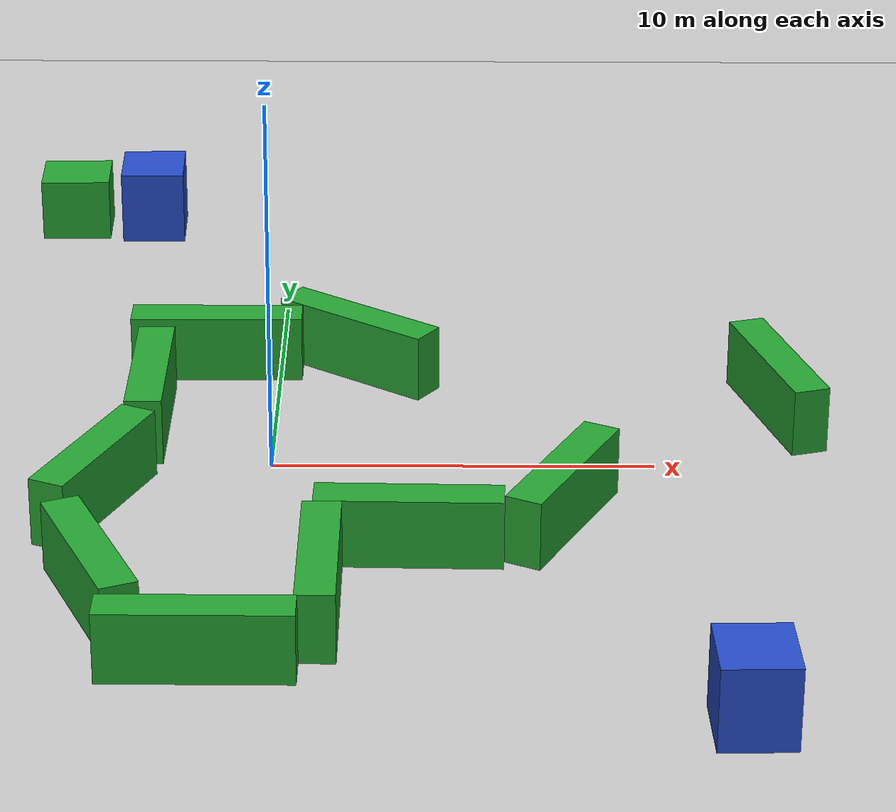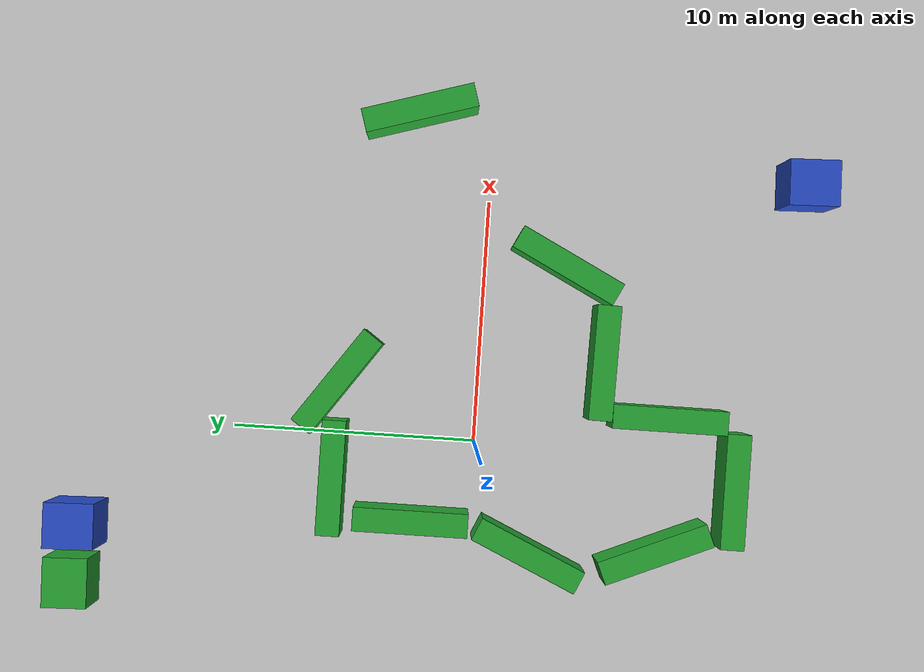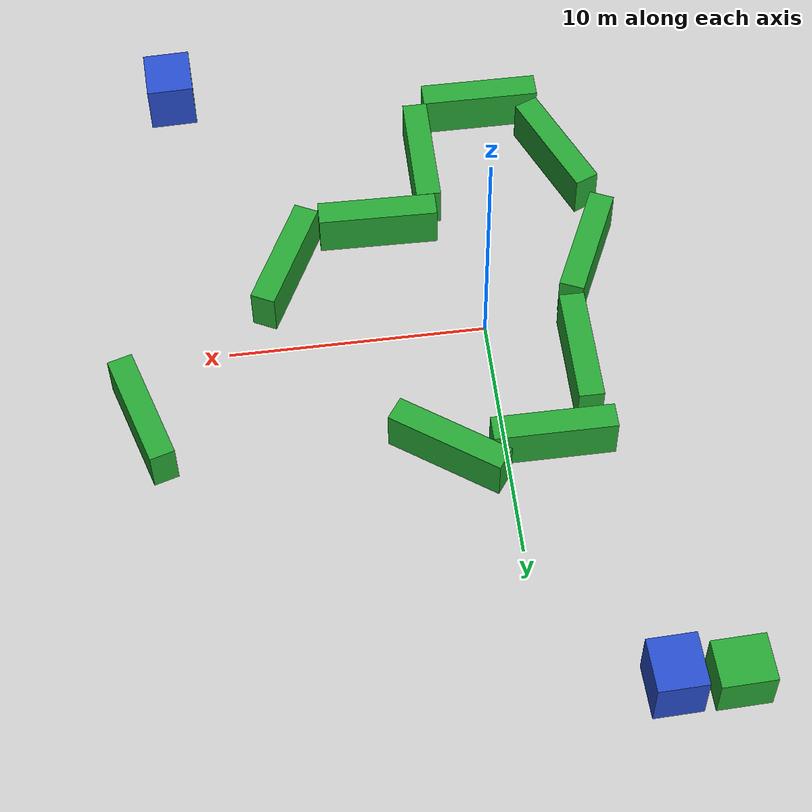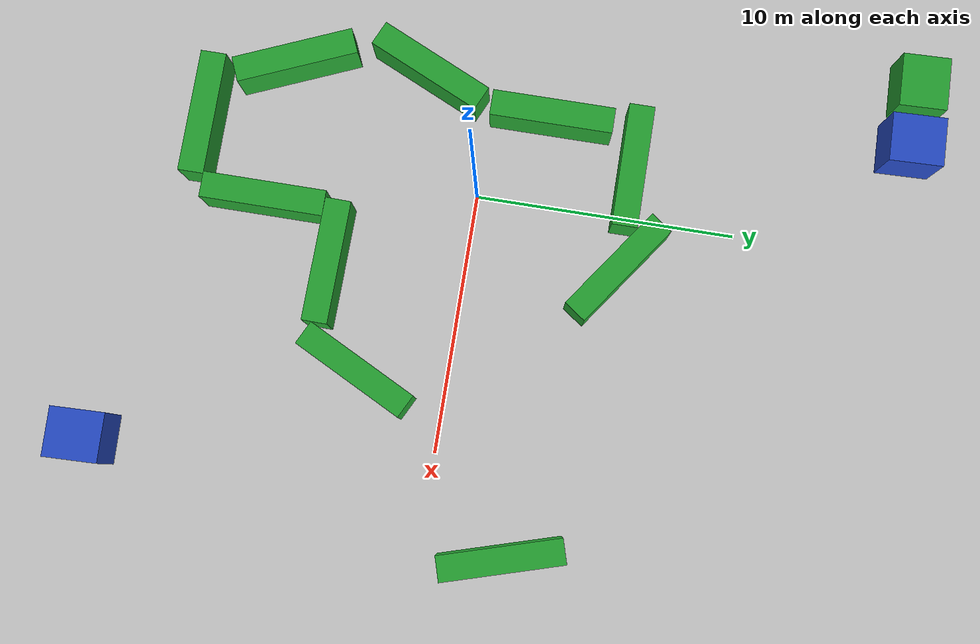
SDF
<sdf version="1.7">
 <world name="default">
  <light name="sun" type="directional">
   <pose>0 0 10 0 -0 0</pose>
   <diffuse>0.8 0.8 0.8 1</diffuse>
   <specular>0.2 0.2 0.2 1</specular>
   <attenuation>
    <range>1000</range>
    <constant>0.9</constant>
    <linear>0.01</linear>
    <quadratic>0.001</quadratic>
   </attenuation>
   <direction>-0.5 0.1 -0.9</direction>
   <spot><inner_angle>0</inner_angle><outer_angle>0</outer_angle><falloff>0</falloff></spot>
  </light>
  <model name="ground_plane">
   <static>1</static>
   <link name="link">
    <collision name="collision">
     <geometry><plane><normal>0 0 1</normal><size>100 100</size></plane></geometry>
     <surface><friction><ode><mu>100</mu><mu2>50</mu2></ode></friction></surface>
    </collision>
    <visual name="visual">
     <cast_shadows>0</cast_shadows>
     <geometry><plane><normal>0 0 1</normal><size>100 100</size></plane></geometry>
     <material>
      <script><uri>file://media/materials/scripts/gazebo.material</uri><name>Gazebo/Grey</name></script>
     </material>
    </visual>
   </link>
  </model>
  <gravity>0 0 -9.8</gravity>
  <magnetic_field>6e-06 2.3e-05 -4.2e-05</magnetic_field>
  <atmosphere type="adiabatic"/>
  <physics type="ode">
   <max_step_size>0.001</max_step_size>
   <real_time_factor>1</real_time_factor>
   <real_time_update_rate>1000</real_time_update_rate>
  </physics>
  <scene><ambient>0.4 0.4 0.4 1</ambient><background>0.7 0.7 0.7 1</background><shadows>1</shadows></scene>
  <audio><device>default</device></audio>
  <spherical_coordinates>
   <surface_model>EARTH_WGS84</surface_model>
   <latitude_deg>0</latitude_deg>
   <longitude_deg>0</longitude_deg>
   <elevation>0</elevation>
   <heading_deg>0</heading_deg>
  </spherical_coordinates>
  <model name="unit_box_clone_clone">
   <pose>-6.68355 16.181 0.914025 1.5708 -0 0.031251</pose>
   <link name="link">
    <inertial>
     <mass>1</mass>
     <inertia>
      <ixx>0.166667</ixx>
      <ixy>0</ixy>
      <ixz>0</ixz>
      <iyy>0.166667</iyy>
      <iyz>0</iyz>
      <izz>0.166667</izz>
     </inertia>
    </inertial>
    <collision name="collision"><geometry><box><size>2.03443 1.82805 1.82357</size></box></geometry></collision>
    <visual name="visual">
     <geometry><box><size>2.03443 1.82805 1.82357</size></box></geometry>
     <material>
      <script><name>Gazebo/Green</name><uri>file://media/materials/scripts/gazebo.material</uri></script>
     </material>
    </visual>
   </link>
  </model>
  <model name="unit_box_clone_0_clone">
   <pose>-4.32885 16.094 1.06964 -4e-06 -0 0.02949</pose>
   <link name="link">
    <inertial>
     <mass>1</mass>
     <inertia>
      <ixx>0.166667</ixx>
      <ixy>0</ixy>
      <ixz>0</ixz>
      <iyy>0.166667</iyy>
      <iyz>0</iyz>
      <izz>0.166667</izz>
     </inertia>
    </inertial>
    <collision name="collision"><geometry><box><size>1.86035 2.04617 2.13929</size></box></geometry></collision>
    <visual name="visual">
     <geometry><box><size>1.86035 2.04617 2.13929</size></box></geometry>
     <material>
      <script><name>Gazebo/Blue</name><uri>file://media/materials/scripts/gazebo.material</uri></script>
     </material>
    </visual>
   </link>
  </model>
  <model name="unit_box_clone_clone_clone">
   <pose>2.17272 5.71774 0.91401 1.5708 -6e-06 0.952913</pose>
   <link name="link">
    <inertial>
     <mass>1</mass>
     <inertia>
      <ixx>0.166667</ixx>
      <ixy>0</ixy>
      <ixz>0</ixz>
      <iyy>0.166667</iyy>
      <iyz>0</iyz>
      <izz>0.166667</izz>
     </inertia>
    </inertial>
    <collision name="collision"><geometry><box><size>0.975841 1.82805 4.68867</size></box></geometry></collision>
    <visual name="visual">
     <geometry><box><size>0.975841 1.82805 4.68867</size></box></geometry>
     <material>
      <script><name>Gazebo/Green</name><uri>file://media/materials/scripts/gazebo.material</uri></script>
     </material>
    </visual>
   </link>
  </model>
  <model name="unit_box_clone_clone_clone_clone">
   <pose>7.46832 -3.33945 0.914026 1.5708 -2e-06 -0.467475</pose>
   <link name="link">
    <inertial>
     <mass>1</mass>
     <inertia>
      <ixx>0.166667</ixx>
      <ixy>0</ixy>
      <ixz>0</ixz>
      <iyy>0.166667</iyy>
      <iyz>0</iyz>
      <izz>0.166667</izz>
     </inertia>
    </inertial>
    <collision name="collision"><geometry><box><size>0.975842 1.82805 4.68867</size></box></geometry></collision>
    <visual name="visual">
     <geometry><box><size>0.975842 1.82805 4.68867</size></box></geometry>
     <material>
      <script><name>Gazebo/Green</name><uri>file://media/materials/scripts/gazebo.material</uri></script>
     </material>
    </visual>
   </link>
  </model>
  <model name="unit_box_clone_clone_clone_clone_0">
   <pose>1.50163 -7.86115 0.913094 1.57119 -0 -0.002864</pose>
   <link name="link">
    <inertial>
     <mass>1</mass>
     <inertia>
      <ixx>0.166667</ixx>
      <ixy>0</ixy>
      <ixz>0</ixz>
      <iyy>0.166667</iyy>
      <iyz>0</iyz>
      <izz>0.166667</izz>
     </inertia>
    </inertial>
    <collision name="collision"><geometry><box><size>0.975842 1.82805 4.68867</size></box></geometry></collision>
    <visual name="visual">
     <geometry><box><size>0.975842 1.82805 4.68867</size></box></geometry>
     <material>
      <script><name>Gazebo/Green</name><uri>file://media/materials/scripts/gazebo.material</uri></script>
     </material>
    </visual>
   </link>
  </model>
  <model name="unit_box_clone_clone_clone_clone_0_clone">
   <pose>3.62764 -5.0638 0.913921 1.57084 0 1.55037</pose>
   <link name="link">
    <inertial>
     <mass>1</mass>
     <inertia>
      <ixx>0.166667</ixx>
      <ixy>0</ixy>
      <ixz>0</ixz>
      <iyy>0.166667</iyy>
      <iyz>0</iyz>
      <izz>0.166667</izz>
     </inertia>
    </inertial>
    <collision name="collision"><geometry><box><size>0.975842 1.82805 4.68867</size></box></geometry></collision>
    <visual name="visual">
     <geometry><box><size>0.975842 1.82805 4.68867</size></box></geometry>
     <material>
      <script><name>Gazebo/Green</name><uri>file://media/materials/scripts/gazebo.material</uri></script>
     </material>
    </visual>
   </link>
  </model>
  <model name="unit_box_clone_clone_clone_clone_0_clone_clone">
   <pose>-1.24947 -10.6855 0.913926 1.57084 0 1.56791</pose>
   <link name="link">
    <inertial>
     <mass>1</mass>
     <inertia>
      <ixx>0.166667</ixx>
      <ixy>0</ixy>
      <ixz>0</ixz>
      <iyy>0.166667</iyy>
      <iyz>0</iyz>
      <izz>0.166667</izz>
     </inertia>
    </inertial>
    <collision name="collision"><geometry><box><size>0.975842 1.82805 4.68867</size></box></geometry></collision>
    <visual name="visual">
     <geometry><box><size>0.975842 1.82805 4.68867</size></box></geometry>
     <material>
      <script><name>Gazebo/Green</name><uri>file://media/materials/scripts/gazebo.material</uri></script>
     </material>
    </visual>
   </link>
  </model>
  <model name="unit_box_clone_clone_clone_clone_0_clone_0">
   <pose>13.448 3.08286 0.91401 1.57079 -4e-06 0.29231</pose>
   <link name="link">
    <inertial>
     <mass>1</mass>
     <inertia>
      <ixx>0.166667</ixx>
      <ixy>0</ixy>
      <ixz>0</ixz>
      <iyy>0.166667</iyy>
      <iyz>0</iyz>
      <izz>0.166667</izz>
     </inertia>
    </inertial>
    <collision name="collision"><geometry><box><size>0.975842 1.82805 4.68867</size></box></geometry></collision>
    <visual name="visual">
     <geometry><box><size>0.975842 1.82805 4.68867</size></box></geometry>
     <material>
      <script><name>Gazebo/Green</name><uri>file://media/materials/scripts/gazebo.material</uri></script>
     </material>
    </visual>
   </link>
  </model>
  <model name="unit_box_clone_clone_clone_clone_0_clone_1">
   <pose>-4.37068 -2.46676 0.914026 1.5708 2e-06 -0.424889</pose>
   <link name="link">
    <inertial>
     <mass>1</mass>
     <inertia>
      <ixx>0.166667</ixx>
      <ixy>0</ixy>
      <ixz>0</ixz>
      <iyy>0.166667</iyy>
      <iyz>0</iyz>
      <izz>0.166667</izz>
     </inertia>
    </inertial>
    <collision name="collision"><geometry><box><size>0.975842 1.82805 4.68867</size></box></geometry></collision>
    <visual name="visual">
     <geometry><box><size>0.975842 1.82805 4.68867</size></box></geometry>
     <material>
      <script><name>Gazebo/Green</name><uri>file://media/materials/scripts/gazebo.material</uri></script>
     </material>
    </visual>
   </link>
  </model>
  <model name="unit_box_clone_clone_clone_clone_0_clone_clone_0">
   <pose>-3.97313 -7.62382 0.91401 1.5708 3e-06 -2.73995</pose>
   <link name="link">
    <inertial>
     <mass>1</mass>
     <inertia>
      <ixx>0.166667</ixx>
      <ixy>0</ixy>
      <ixz>0</ixz>
      <iyy>0.166667</iyy>
      <iyz>0</iyz>
      <izz>0.166667</izz>
     </inertia>
    </inertial>
    <collision name="collision"><geometry><box><size>0.975842 1.82805 4.68867</size></box></geometry></collision>
    <visual name="visual">
     <geometry><box><size>0.975842 1.82805 4.68867</size></box></geometry>
     <material>
      <script><name>Gazebo/Green</name><uri>file://media/materials/scripts/gazebo.material</uri></script>
     </material>
    </visual>
   </link>
  </model>
  <model name="unit_box_clone_clone_clone_clone_0_clone_clone_1">
   <pose>-1.74752 5.71836 0.913087 1.5704 -0 1.57133</pose>
   <link name="link">
    <inertial>
     <mass>1</mass>
     <inertia>
      <ixx>0.166667</ixx>
      <ixy>0</ixy>
      <ixz>0</ixz>
      <iyy>0.166667</iyy>
      <iyz>0</iyz>
      <izz>0.166667</izz>
     </inertia>
    </inertial>
    <collision name="collision"><geometry><box><size>0.975842 1.82805 4.68867</size></box></geometry></collision>
    <visual name="visual">
     <geometry><box><size>0.975842 1.82805 4.68867</size></box></geometry>
     <material>
      <script><name>Gazebo/Green</name><uri>file://media/materials/scripts/gazebo.material</uri></script>
     </material>
    </visual>
   </link>
  </model>
  <model name="unit_box_clone_clone_clone_clone_0_clone_1_clone">
   <pose>-3.32902 2.39576 0.913087 1.5704 -0 -0.000396</pose>
   <link name="link">
    <inertial>
     <mass>1</mass>
     <inertia>
      <ixx>0.166667</ixx>
      <ixy>0</ixy>
      <ixz>0</ixz>
      <iyy>0.166667</iyy>
      <iyz>0</iyz>
      <izz>0.166667</izz>
     </inertia>
    </inertial>
    <collision name="collision"><geometry><box><size>0.975842 1.82805 4.68867</size></box></geometry></collision>
    <visual name="visual">
     <geometry><box><size>0.975842 1.82805 4.68867</size></box></geometry>
     <material>
      <script><name>Gazebo/Green</name><uri>file://media/materials/scripts/gazebo.material</uri></script>
     </material>
    </visual>
   </link>
  </model>
  <model name="unit_box_clone_0_clone_clone">
   <pose>11.4211 -12.9758 1.06964 0 -1e-06 0.029491</pose>
   <link name="link">
    <inertial>
     <mass>1</mass>
     <inertia>
      <ixx>0.166667</ixx>
      <ixy>0</ixy>
      <ixz>0</ixz>
      <iyy>0.166667</iyy>
      <iyz>0</iyz>
      <izz>0.166667</izz>
     </inertia>
    </inertial>
    <collision name="collision"><geometry><box><size>1.86035 2.04617 2.13929</size></box></geometry></collision>
    <visual name="visual">
     <geometry><box><size>1.86035 2.04617 2.13929</size></box></geometry>
     <material>
      <script><name>Gazebo/Blue</name><uri>file://media/materials/scripts/gazebo.material</uri></script>
     </material>
    </visual>
   </link>
  </model>
 </world>
</sdf>
